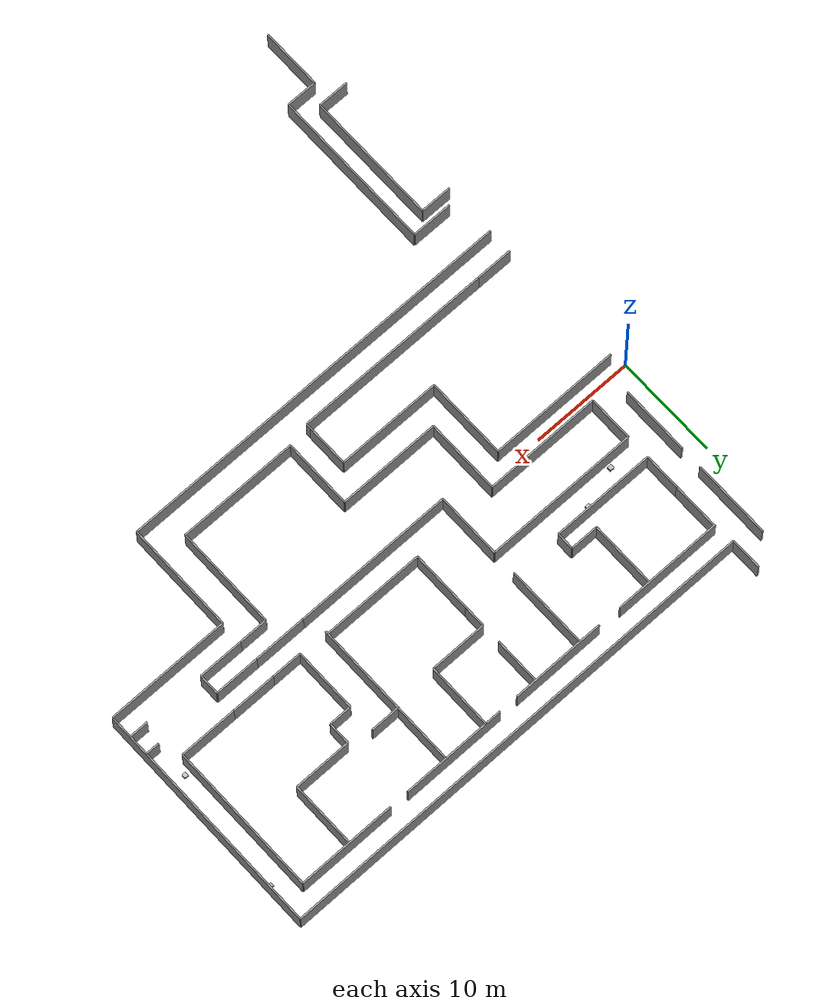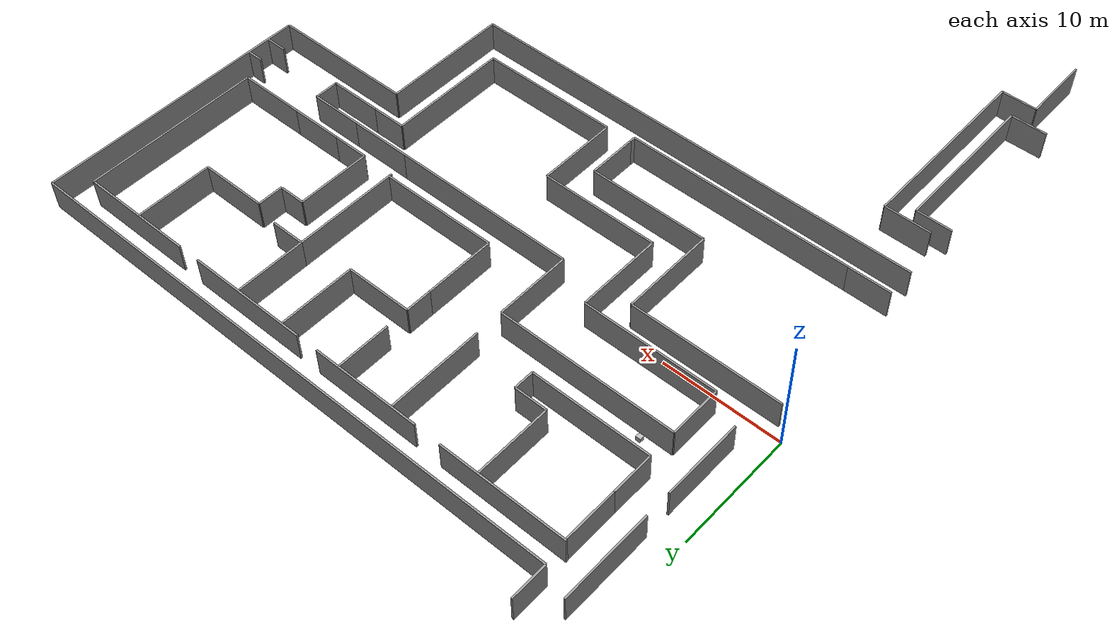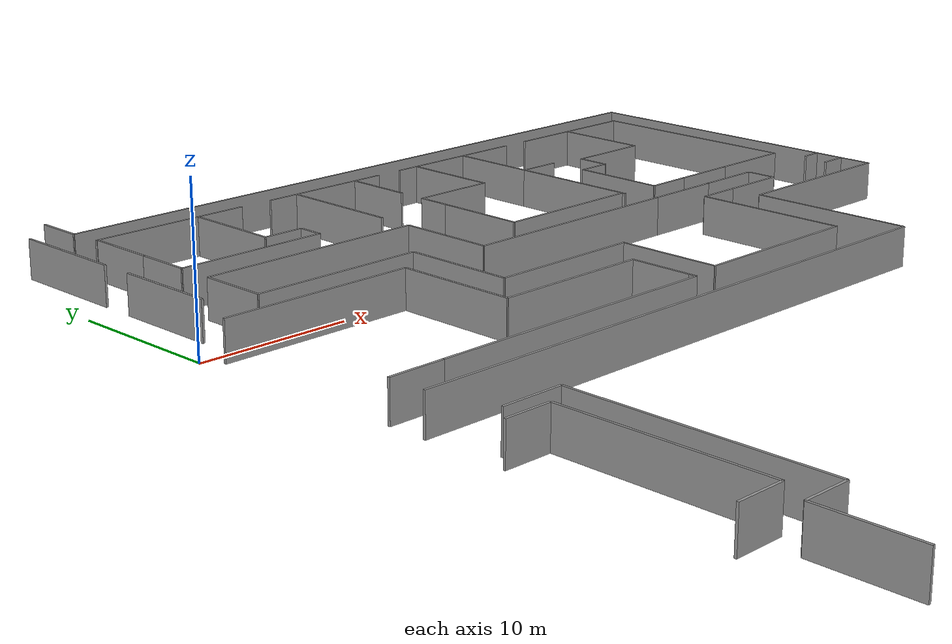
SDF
<sdf version="1.6">
 <world name="default">
  <model name="Wean4Complete">
   <pose>-5 0 0 0 -0 0</pose>
   <static>1</static>
   <link name="Wall_27">
    <collision name="Wall_27_Collision">
     <geometry><box><size>7.676 0.15 2.5</size></box></geometry>
     <pose>0 0 1.25 0 -0 0</pose>
    </collision>
    <visual name="Wall_27_Visual">
     <pose>0 0 1.25 0 -0 0</pose>
     <geometry><box><size>7.676 0.15 2.5</size></box></geometry>
     <material>
      <script><uri>file://media/materials/scripts/gazebo.material</uri><name>Gazebo/Grey</name></script>
      <ambient>1 1 1 1</ambient>
     </material>
    </visual>
    <pose>7.166 15.189 0 0 0 1.57079632679</pose>
   </link>
   <link name="Wall_29">
    <collision name="Wall_29_Collision">
     <geometry><box><size>3.081 0.15 2.5</size></box></geometry>
     <pose>0 0 1.25 0 -0 0</pose>
    </collision>
    <visual name="Wall_29_Visual">
     <pose>0 0 1.25 0 -0 0</pose>
     <geometry><box><size>3.081 0.15 2.5</size></box></geometry>
     <material>
      <script><uri>file://media/materials/scripts/gazebo.material</uri><name>Gazebo/Grey</name></script>
      <ambient>1 1 1 1</ambient>
     </material>
    </visual>
    <pose>9.545 19.5405 0 0 0 1.57079632679</pose>
   </link>
   <link name="Wall_30">
    <collision name="Wall_30_Collision">
     <geometry><box><size>48.378 0.15 2.5</size></box></geometry>
     <pose>0 0 1.25 0 -0 0</pose>
    </collision>
    <visual name="Wall_30_Visual">
     <pose>0 0 1.25 0 -0 0</pose>
     <geometry><box><size>48.378 0.15 2.5</size></box></geometry>
     <material>
      <script><uri>file://media/materials/scripts/gazebo.material</uri><name>Gazebo/Grey</name></script>
      <ambient>1 1 1 1</ambient>
     </material>
    </visual>
    <pose>33.734 18.0 0 0 0 0.0</pose>
   </link>
   <link name="Wall_31">
    <collision name="Wall_31_Collision">
     <geometry><box><size>23.189 0.15 2.5</size></box></geometry>
     <pose>0 0 1.25 0 -0 0</pose>
    </collision>
    <visual name="Wall_31_Visual">
     <pose>0 0 1.25 0 -0 0</pose>
     <geometry><box><size>23.189 0.15 2.5</size></box></geometry>
     <material>
      <script><uri>file://media/materials/scripts/gazebo.material</uri><name>Gazebo/Grey</name></script>
      <ambient>1 1 1 1</ambient>
     </material>
    </visual>
    <pose>57.923 6.4055 0 0 0 1.57079632679</pose>
   </link>
   <link name="Wall_32">
    <collision name="Wall_32_Collision">
     <geometry><box><size>1.838 0.15 2.5</size></box></geometry>
     <pose>0 0 1.25 0 -0 0</pose>
    </collision>
    <visual name="Wall_32_Visual">
     <pose>0 0 1.25 0 -0 0</pose>
     <geometry><box><size>1.838 0.15 2.5</size></box></geometry>
     <material>
      <script><uri>file://media/materials/scripts/gazebo.material</uri><name>Gazebo/Grey</name></script>
      <ambient>1 1 1 1</ambient>
     </material>
    </visual>
    <pose>57.004 -2.973 0 0 0 0.0</pose>
   </link>
   <link name="Wall_33">
    <collision name="Wall_33_Collision">
     <geometry><box><size>1.351 0.15 2.5</size></box></geometry>
     <pose>0 0 1.25 0 -0 0</pose>
    </collision>
    <visual name="Wall_33_Visual">
     <pose>0 0 1.25 0 -0 0</pose>
     <geometry><box><size>1.351 0.15 2.5</size></box></geometry>
     <material>
      <script><uri>file://media/materials/scripts/gazebo.material</uri><name>Gazebo/Grey</name></script>
      <ambient>1 1 1 1</ambient>
     </material>
    </visual>
    <pose>57.2475 -0.973 0 0 0 0.0</pose>
   </link>
   <link name="Wall_34">
    <collision name="Wall_34_Collision">
     <geometry><box><size>12.162 0.15 2.5</size></box></geometry>
     <pose>0 0 1.25 0 -0 0</pose>
    </collision>
    <visual name="Wall_34_Visual">
     <pose>0 0 1.25 0 -0 0</pose>
     <geometry><box><size>12.162 0.15 2.5</size></box></geometry>
     <material>
      <script><uri>file://media/materials/scripts/gazebo.material</uri><name>Gazebo/Grey</name></script>
      <ambient>1 1 1 1</ambient>
     </material>
    </visual>
    <pose>51.842 -5.189 0 0 0 0.0</pose>
   </link>
   <link name="Wall_35">
    <collision name="Wall_35_Collision">
     <geometry><box><size>4.378 0.15 2.5</size></box></geometry>
     <pose>0 0 1.25 0 -0 0</pose>
    </collision>
    <visual name="Wall_35_Visual">
     <pose>0 0 1.25 0 -0 0</pose>
     <geometry><box><size>4.378 0.15 2.5</size></box></geometry>
     <material>
      <script><uri>file://media/materials/scripts/gazebo.material</uri><name>Gazebo/Grey</name></script>
      <ambient>1 1 1 1</ambient>
     </material>
    </visual>
    <pose>47.95 -2.973 0 0 0 0.0</pose>
   </link>
   <link name="Wall_36">
    <collision name="Wall_36_Collision">
     <geometry><box><size>2.0 0.15 2.5</size></box></geometry>
     <pose>0 0 1.25 0 -0 0</pose>
    </collision>
    <visual name="Wall_36_Visual">
     <pose>0 0 1.25 0 -0 0</pose>
     <geometry><box><size>2.0 0.15 2.5</size></box></geometry>
     <material>
      <script><uri>file://media/materials/scripts/gazebo.material</uri><name>Gazebo/Grey</name></script>
      <ambient>1 1 1 1</ambient>
     </material>
    </visual>
    <pose>50.139 -1.973 0 0 0 1.57079632679</pose>
   </link>
   <link name="Wall_37">
    <collision name="Wall_37_Collision">
     <geometry><box><size>4.378 0.15 2.5</size></box></geometry>
     <pose>0 0 1.25 0 -0 0</pose>
    </collision>
    <visual name="Wall_37_Visual">
     <pose>0 0 1.25 0 -0 0</pose>
     <geometry><box><size>4.378 0.15 2.5</size></box></geometry>
     <material>
      <script><uri>file://media/materials/scripts/gazebo.material</uri><name>Gazebo/Grey</name></script>
      <ambient>1 1 1 1</ambient>
     </material>
    </visual>
    <pose>47.95 -0.973 0 0 0 0.0</pose>
   </link>
   <link name="Wall_38">
    <collision name="Wall_38_Collision">
     <geometry><box><size>4.378 0.15 2.5</size></box></geometry>
     <pose>0 0 1.25 0 -0 0</pose>
    </collision>
    <visual name="Wall_38_Visual">
     <pose>0 0 1.25 0 -0 0</pose>
     <geometry><box><size>4.378 0.15 2.5</size></box></geometry>
     <material>
      <script><uri>file://media/materials/scripts/gazebo.material</uri><name>Gazebo/Grey</name></script>
      <ambient>1 1 1 1</ambient>
     </material>
    </visual>
    <pose>47.95 1.081 0 0 0 0.0</pose>
   </link>
   <link name="Wall_39">
    <collision name="Wall_39_Collision">
     <geometry><box><size>5.622 0.15 2.5</size></box></geometry>
     <pose>0 0 1.25 0 -0 0</pose>
    </collision>
    <visual name="Wall_39_Visual">
     <pose>0 0 1.25 0 -0 0</pose>
     <geometry><box><size>5.622 0.15 2.5</size></box></geometry>
     <material>
      <script><uri>file://media/materials/scripts/gazebo.material</uri><name>Gazebo/Grey</name></script>
      <ambient>1 1 1 1</ambient>
     </material>
    </visual>
    <pose>52.95 1.081 0 0 0 0.0</pose>
   </link>
   <link name="Wall_40">
    <collision name="Wall_40_Collision">
     <geometry><box><size>14.811 0.15 2.5</size></box></geometry>
     <pose>0 0 1.25 0 -0 0</pose>
    </collision>
    <visual name="Wall_40_Visual">
     <pose>0 0 1.25 0 -0 0</pose>
     <geometry><box><size>14.811 0.15 2.5</size></box></geometry>
     <material>
      <script><uri>file://media/materials/scripts/gazebo.material</uri><name>Gazebo/Grey</name></script>
      <ambient>1 1 1 1</ambient>
     </material>
    </visual>
    <pose>55.761 8.4865 0 0 0 1.57079632679</pose>
   </link>
   <link name="Wall_41">
    <collision name="Wall_41_Collision">
     <geometry><box><size>9.676 0.15 2.5</size></box></geometry>
     <pose>0 0 1.25 0 -0 0</pose>
    </collision>
    <visual name="Wall_41_Visual">
     <pose>0 0 1.25 0 -0 0</pose>
     <geometry><box><size>9.676 0.15 2.5</size></box></geometry>
     <material>
      <script><uri>file://media/materials/scripts/gazebo.material</uri><name>Gazebo/Grey</name></script>
      <ambient>1 1 1 1</ambient>
     </material>
    </visual>
    <pose>50.923 15.892 0 0 0 0.0</pose>
   </link>
   <link name="Wall_42">
    <collision name="Wall_42_Collision">
     <geometry><box><size>10.27 0.15 2.5</size></box></geometry>
     <pose>0 0 1.25 0 -0 0</pose>
    </collision>
    <visual name="Wall_42_Visual">
     <pose>0 0 1.25 0 -0 0</pose>
     <geometry><box><size>10.27 0.15 2.5</size></box></geometry>
     <material>
      <script><uri>file://media/materials/scripts/gazebo.material</uri><name>Gazebo/Grey</name></script>
      <ambient>1 1 1 1</ambient>
     </material>
    </visual>
    <pose>39.058 15.892 0 0 0 0.0</pose>
   </link>
   <link name="Wall_43">
    <collision name="Wall_43_Collision">
     <geometry><box><size>9.243 0.15 2.5</size></box></geometry>
     <pose>0 0 1.25 0 -0 0</pose>
    </collision>
    <visual name="Wall_43_Visual">
     <pose>0 0 1.25 0 -0 0</pose>
     <geometry><box><size>9.243 0.15 2.5</size></box></geometry>
     <material>
      <script><uri>file://media/materials/scripts/gazebo.material</uri><name>Gazebo/Grey</name></script>
      <ambient>1 1 1 1</ambient>
     </material>
    </visual>
    <pose>27.4095 15.892 0 0 0 0.0</pose>
   </link>
   <link name="Wall_44">
    <collision name="Wall_44_Collision">
     <geometry><box><size>6.433 0.15 2.5</size></box></geometry>
     <pose>0 0 1.25 0 -0 0</pose>
    </collision>
    <visual name="Wall_44_Visual">
     <pose>0 0 1.25 0 -0 0</pose>
     <geometry><box><size>6.433 0.15 2.5</size></box></geometry>
     <material>
      <script><uri>file://media/materials/scripts/gazebo.material</uri><name>Gazebo/Grey</name></script>
      <ambient>1 1 1 1</ambient>
     </material>
    </visual>
    <pose>50.626 12.6755 0 0 0 1.57079632679</pose>
   </link>
   <link name="Wall_45">
    <collision name="Wall_45_Collision">
     <geometry><box><size>5.622 0.15 2.5</size></box></geometry>
     <pose>0 0 1.25 0 -0 0</pose>
    </collision>
    <visual name="Wall_45_Visual">
     <pose>0 0 1.25 0 -0 0</pose>
     <geometry><box><size>5.622 0.15 2.5</size></box></geometry>
     <material>
      <script><uri>file://media/materials/scripts/gazebo.material</uri><name>Gazebo/Grey</name></script>
      <ambient>1 1 1 1</ambient>
     </material>
    </visual>
    <pose>47.815 9.459 0 0 0 0.0</pose>
   </link>
   <link name="Wall_46">
    <collision name="Wall_46_Collision">
     <geometry><box><size>2.162 0.15 2.5</size></box></geometry>
     <pose>0 0 1.25 0 -0 0</pose>
    </collision>
    <visual name="Wall_46_Visual">
     <pose>0 0 1.25 0 -0 0</pose>
     <geometry><box><size>2.162 0.15 2.5</size></box></geometry>
     <material>
      <script><uri>file://media/materials/scripts/gazebo.material</uri><name>Gazebo/Grey</name></script>
      <ambient>1 1 1 1</ambient>
     </material>
    </visual>
    <pose>45.004 8.378 0 0 0 1.57079632679</pose>
   </link>
   <link name="Wall_47">
    <collision name="Wall_47_Collision">
     <geometry><box><size>2.162 0.15 2.5</size></box></geometry>
     <pose>0 0 1.25 0 -0 0</pose>
    </collision>
    <visual name="Wall_47_Visual">
     <pose>0 0 1.25 0 -0 0</pose>
     <geometry><box><size>2.162 0.15 2.5</size></box></geometry>
     <material>
      <script><uri>file://media/materials/scripts/gazebo.material</uri><name>Gazebo/Grey</name></script>
      <ambient>1 1 1 1</ambient>
     </material>
    </visual>
    <pose>43.869 7.297 0 0 0 0.0</pose>
   </link>
   <link name="Wall_48">
    <collision name="Wall_48_Collision">
     <geometry><box><size>6.216 0.15 2.5</size></box></geometry>
     <pose>0 0 1.25 0 -0 0</pose>
    </collision>
    <visual name="Wall_48_Visual">
     <pose>0 0 1.25 0 -0 0</pose>
     <geometry><box><size>6.216 0.15 2.5</size></box></geometry>
     <material>
      <script><uri>file://media/materials/scripts/gazebo.material</uri><name>Gazebo/Grey</name></script>
      <ambient>1 1 1 1</ambient>
     </material>
    </visual>
    <pose>42.788 4.189 0 0 0 1.57079632679</pose>
   </link>
   <link name="Wall_49">
    <collision name="Wall_49_Collision">
     <geometry><box><size>2.973 0.15 2.5</size></box></geometry>
     <pose>0 0 1.25 0 -0 0</pose>
    </collision>
    <visual name="Wall_49_Visual">
     <pose>0 0 1.25 0 -0 0</pose>
     <geometry><box><size>2.973 0.15 2.5</size></box></geometry>
     <material>
      <script><uri>file://media/materials/scripts/gazebo.material</uri><name>Gazebo/Grey</name></script>
      <ambient>1 1 1 1</ambient>
     </material>
    </visual>
    <pose>44.2745 1.081 0 0 0 0.0</pose>
   </link>
   <link name="Wall_50">
    <collision name="Wall_50_Collision">
     <geometry><box><size>5.135 0.15 2.5</size></box></geometry>
     <pose>0 0 1.25 0 -0 0</pose>
    </collision>
    <visual name="Wall_50_Visual">
     <pose>0 0 1.25 0 -0 0</pose>
     <geometry><box><size>5.135 0.15 2.5</size></box></geometry>
     <material>
      <script><uri>file://media/materials/scripts/gazebo.material</uri><name>Gazebo/Grey</name></script>
      <ambient>1 1 1 1</ambient>
     </material>
    </visual>
    <pose>43.1935 -0.973 0 0 0 0.0</pose>
   </link>
   <link name="Wall_51">
    <collision name="Wall_51_Collision">
     <geometry><box><size>8.919 0.15 2.5</size></box></geometry>
     <pose>0 0 1.25 0 -0 0</pose>
    </collision>
    <visual name="Wall_51_Visual">
     <pose>0 0 1.25 0 -0 0</pose>
     <geometry><box><size>8.919 0.15 2.5</size></box></geometry>
     <material>
      <script><uri>file://media/materials/scripts/gazebo.material</uri><name>Gazebo/Grey</name></script>
      <ambient>1 1 1 1</ambient>
     </material>
    </visual>
    <pose>39.923 5.5405 0 0 0 1.57079632679</pose>
   </link>
   <link name="Wall_52">
    <collision name="Wall_52_Collision">
     <geometry><box><size>2.865 0.15 2.5</size></box></geometry>
     <pose>0 0 1.25 0 -0 0</pose>
    </collision>
    <visual name="Wall_52_Visual">
     <pose>0 0 1.25 0 -0 0</pose>
     <geometry><box><size>2.865 0.15 2.5</size></box></geometry>
     <material>
      <script><uri>file://media/materials/scripts/gazebo.material</uri><name>Gazebo/Grey</name></script>
      <ambient>1 1 1 1</ambient>
     </material>
    </visual>
    <pose>41.3555 10.0 0 0 0 0.0</pose>
   </link>
   <link name="Wall_53">
    <collision name="Wall_53_Collision">
     <geometry><box><size>5.892 0.15 2.5</size></box></geometry>
     <pose>0 0 1.25 0 -0 0</pose>
    </collision>
    <visual name="Wall_53_Visual">
     <pose>0 0 1.25 0 -0 0</pose>
     <geometry><box><size>5.892 0.15 2.5</size></box></geometry>
     <material>
      <script><uri>file://media/materials/scripts/gazebo.material</uri><name>Gazebo/Grey</name></script>
      <ambient>1 1 1 1</ambient>
     </material>
    </visual>
    <pose>39.923 12.946 0 0 0 1.57079632679</pose>
   </link>
   <link name="Wall_54">
    <collision name="Wall_54_Collision">
     <geometry><box><size>10.757 0.15 2.5</size></box></geometry>
     <pose>0 0 1.25 0 -0 0</pose>
    </collision>
    <visual name="Wall_54_Visual">
     <pose>0 0 1.25 0 -0 0</pose>
     <geometry><box><size>10.757 0.15 2.5</size></box></geometry>
     <material>
      <script><uri>file://media/materials/scripts/gazebo.material</uri><name>Gazebo/Grey</name></script>
      <ambient>1 1 1 1</ambient>
     </material>
    </visual>
    <pose>45.761 -10.5675 0 0 0 1.57079632679</pose>
   </link>
   <link name="Wall_55">
    <collision name="Wall_55_Collision">
     <geometry><box><size>39.838 0.15 2.5</size></box></geometry>
     <pose>0 0 1.25 0 -0 0</pose>
    </collision>
    <visual name="Wall_55_Visual">
     <pose>0 0 1.25 0 -0 0</pose>
     <geometry><box><size>39.838 0.15 2.5</size></box></geometry>
     <material>
      <script><uri>file://media/materials/scripts/gazebo.material</uri><name>Gazebo/Grey</name></script>
      <ambient>1 1 1 1</ambient>
     </material>
    </visual>
    <pose>25.842 -15.946 0 0 0 0.0</pose>
   </link>
   <link name="Wall_56">
    <collision name="Wall_56_Collision">
     <geometry><box><size>4.541 0.15 2.5</size></box></geometry>
     <pose>0 0 1.25 0 -0 0</pose>
    </collision>
    <visual name="Wall_56_Visual">
     <pose>0 0 1.25 0 -0 0</pose>
     <geometry><box><size>4.541 0.15 2.5</size></box></geometry>
     <material>
      <script><uri>file://media/materials/scripts/gazebo.material</uri><name>Gazebo/Grey</name></script>
      <ambient>1 1 1 1</ambient>
     </material>
    </visual>
    <pose>9.815 13.6215 0 0 0 1.57079632679</pose>
   </link>
   <link name="Wall_57">
    <collision name="Wall_57_Collision">
     <geometry><box><size>4.541 0.15 2.5</size></box></geometry>
     <pose>0 0 1.25 0 -0 0</pose>
    </collision>
    <visual name="Wall_57_Visual">
     <pose>0 0 1.25 0 -0 0</pose>
     <geometry><box><size>4.541 0.15 2.5</size></box></geometry>
     <material>
      <script><uri>file://media/materials/scripts/gazebo.material</uri><name>Gazebo/Grey</name></script>
      <ambient>1 1 1 1</ambient>
     </material>
    </visual>
    <pose>29.923 13.6215 0 0 0 1.57079632679</pose>
   </link>
   <link name="Wall_58">
    <collision name="Wall_58_Collision">
     <geometry><box><size>6.433 0.15 2.5</size></box></geometry>
     <pose>0 0 1.25 0 -0 0</pose>
    </collision>
    <visual name="Wall_58_Visual">
     <pose>0 0 1.25 0 -0 0</pose>
     <geometry><box><size>6.433 0.15 2.5</size></box></geometry>
     <material>
      <script><uri>file://media/materials/scripts/gazebo.material</uri><name>Gazebo/Grey</name></script>
      <ambient>1 1 1 1</ambient>
     </material>
    </visual>
    <pose>35.491 12.6755 0 0 0 1.57079632679</pose>
   </link>
   <link name="Wall_59">
    <collision name="Wall_59_Collision">
     <geometry><box><size>5.568 0.15 2.5</size></box></geometry>
     <pose>0 0 1.25 0 -0 0</pose>
    </collision>
    <visual name="Wall_59_Visual">
     <pose>0 0 1.25 0 -0 0</pose>
     <geometry><box><size>5.568 0.15 2.5</size></box></geometry>
     <material>
      <script><uri>file://media/materials/scripts/gazebo.material</uri><name>Gazebo/Grey</name></script>
      <ambient>1 1 1 1</ambient>
     </material>
    </visual>
    <pose>32.707 9.459 0 0 0 0.0</pose>
   </link>
   <link name="Wall_60">
    <collision name="Wall_60_Collision">
     <geometry><box><size>2.162 0.15 2.5</size></box></geometry>
     <pose>0 0 1.25 0 -0 0</pose>
    </collision>
    <visual name="Wall_60_Visual">
     <pose>0 0 1.25 0 -0 0</pose>
     <geometry><box><size>2.162 0.15 2.5</size></box></geometry>
     <material>
      <script><uri>file://media/materials/scripts/gazebo.material</uri><name>Gazebo/Grey</name></script>
      <ambient>1 1 1 1</ambient>
     </material>
    </visual>
    <pose>29.923 8.378 0 0 0 1.57079632679</pose>
   </link>
   <link name="Wall_61">
    <collision name="Wall_61_Collision">
     <geometry><box><size>8.108 0.15 2.5</size></box></geometry>
     <pose>0 0 1.25 0 -0 0</pose>
    </collision>
    <visual name="Wall_61_Visual">
     <pose>0 0 1.25 0 -0 0</pose>
     <geometry><box><size>8.108 0.15 2.5</size></box></geometry>
     <material>
      <script><uri>file://media/materials/scripts/gazebo.material</uri><name>Gazebo/Grey</name></script>
      <ambient>1 1 1 1</ambient>
     </material>
    </visual>
    <pose>24.95 11.838 0 0 0 1.57079632679</pose>
   </link>
   <link name="Wall_62">
    <collision name="Wall_62_Collision">
     <geometry><box><size>6.433 0.15 2.5</size></box></geometry>
     <pose>0 0 1.25 0 -0 0</pose>
    </collision>
    <visual name="Wall_62_Visual">
     <pose>0 0 1.25 0 -0 0</pose>
     <geometry><box><size>6.433 0.15 2.5</size></box></geometry>
     <material>
      <script><uri>file://media/materials/scripts/gazebo.material</uri><name>Gazebo/Grey</name></script>
      <ambient>1 1 1 1</ambient>
     </material>
    </visual>
    <pose>17.166 12.6755 0 0 0 1.57079632679</pose>
   </link>
   <link name="Wall_63">
    <collision name="Wall_63_Collision">
     <geometry><box><size>2.757 0.15 2.5</size></box></geometry>
     <pose>0 0 1.25 0 -0 0</pose>
    </collision>
    <visual name="Wall_63_Visual">
     <pose>0 0 1.25 0 -0 0</pose>
     <geometry><box><size>2.757 0.15 2.5</size></box></geometry>
     <material>
      <script><uri>file://media/materials/scripts/gazebo.material</uri><name>Gazebo/Grey</name></script>
      <ambient>1 1 1 1</ambient>
     </material>
    </visual>
    <pose>18.5445 9.459 0 0 0 0.0</pose>
   </link>
   <link name="Wall_64">
    <collision name="Wall_64_Collision">
     <geometry><box><size>1.675 0.15 2.5</size></box></geometry>
     <pose>0 0 1.25 0 -0 0</pose>
    </collision>
    <visual name="Wall_64_Visual">
     <pose>0 0 1.25 0 -0 0</pose>
     <geometry><box><size>1.675 0.15 2.5</size></box></geometry>
     <material>
      <script><uri>file://media/materials/scripts/gazebo.material</uri><name>Gazebo/Grey</name></script>
      <ambient>1 1 1 1</ambient>
     </material>
    </visual>
    <pose>19.923 8.6215 0 0 0 1.57079632679</pose>
   </link>
   <link name="Wall_65">
    <collision name="Wall_65_Collision">
     <geometry><box><size>10.108 0.15 2.5</size></box></geometry>
     <pose>0 0 1.25 0 -0 0</pose>
    </collision>
    <visual name="Wall_65_Visual">
     <pose>0 0 1.25 0 -0 0</pose>
     <geometry><box><size>10.108 0.15 2.5</size></box></geometry>
     <material>
      <script><uri>file://media/materials/scripts/gazebo.material</uri><name>Gazebo/Grey</name></script>
      <ambient>1 1 1 1</ambient>
     </material>
    </visual>
    <pose>14.869 7.784 0 0 0 0.0</pose>
   </link>
   <link name="Wall_66">
    <collision name="Wall_66_Collision">
     <geometry><box><size>3.567 0.15 2.5</size></box></geometry>
     <pose>0 0 1.25 0 -0 0</pose>
    </collision>
    <visual name="Wall_66_Visual">
     <pose>0 0 1.25 0 -0 0</pose>
     <geometry><box><size>3.567 0.15 2.5</size></box></geometry>
     <material>
      <script><uri>file://media/materials/scripts/gazebo.material</uri><name>Gazebo/Grey</name></script>
      <ambient>1 1 1 1</ambient>
     </material>
    </visual>
    <pose>9.815 9.5675 0 0 0 1.57079632679</pose>
   </link>
   <link name="Wall_67">
    <collision name="Wall_67_Collision">
     <geometry><box><size>5.946 0.15 2.5</size></box></geometry>
     <pose>0 0 1.25 0 -0 0</pose>
    </collision>
    <visual name="Wall_67_Visual">
     <pose>0 0 1.25 0 -0 0</pose>
     <geometry><box><size>5.946 0.15 2.5</size></box></geometry>
     <material>
      <script><uri>file://media/materials/scripts/gazebo.material</uri><name>Gazebo/Grey</name></script>
      <ambient>1 1 1 1</ambient>
     </material>
    </visual>
    <pose>29.923 4.324 0 0 0 1.57079632679</pose>
   </link>
   <link name="Wall_68">
    <collision name="Wall_68_Collision">
     <geometry><box><size>10.0 0.15 2.5</size></box></geometry>
     <pose>0 0 1.25 0 -0 0</pose>
    </collision>
    <visual name="Wall_68_Visual">
     <pose>0 0 1.25 0 -0 0</pose>
     <geometry><box><size>10.0 0.15 2.5</size></box></geometry>
     <material>
      <script><uri>file://media/materials/scripts/gazebo.material</uri><name>Gazebo/Grey</name></script>
      <ambient>1 1 1 1</ambient>
     </material>
    </visual>
    <pose>34.923 1.351 0 0 0 0.0</pose>
   </link>
   <link name="Wall_69">
    <collision name="Wall_69_Collision">
     <geometry><box><size>15.135 0.15 2.5</size></box></geometry>
     <pose>0 0 1.25 0 -0 0</pose>
    </collision>
    <visual name="Wall_69_Visual">
     <pose>0 0 1.25 0 -0 0</pose>
     <geometry><box><size>15.135 0.15 2.5</size></box></geometry>
     <material>
      <script><uri>file://media/materials/scripts/gazebo.material</uri><name>Gazebo/Grey</name></script>
      <ambient>1 1 1 1</ambient>
     </material>
    </visual>
    <pose>17.3825 5.405 0 0 0 0.0</pose>
   </link>
   <link name="Wall_70">
    <collision name="Wall_70_Collision">
     <geometry><box><size>15.676 0.15 2.5</size></box></geometry>
     <pose>0 0 1.25 0 -0 0</pose>
    </collision>
    <visual name="Wall_70_Visual">
     <pose>0 0 1.25 0 -0 0</pose>
     <geometry><box><size>15.676 0.15 2.5</size></box></geometry>
     <material>
      <script><uri>file://media/materials/scripts/gazebo.material</uri><name>Gazebo/Grey</name></script>
      <ambient>1 1 1 1</ambient>
     </material>
    </visual>
    <pose>32.788 -0.973 0 0 0 0.0</pose>
   </link>
   <link name="Wall_71">
    <collision name="Wall_71_Collision">
     <geometry><box><size>6.378 0.15 2.5</size></box></geometry>
     <pose>0 0 1.25 0 -0 0</pose>
    </collision>
    <visual name="Wall_71_Visual">
     <pose>0 0 1.25 0 -0 0</pose>
     <geometry><box><size>6.378 0.15 2.5</size></box></geometry>
     <material>
      <script><uri>file://media/materials/scripts/gazebo.material</uri><name>Gazebo/Grey</name></script>
      <ambient>1 1 1 1</ambient>
     </material>
    </visual>
    <pose>24.95 2.216 0 0 0 1.57079632679</pose>
   </link>
   <link name="Wall_72">
    <collision name="Wall_72_Collision">
     <geometry><box><size>2.811 0.15 2.5</size></box></geometry>
     <pose>0 0 1.25 0 -0 0</pose>
    </collision>
    <visual name="Wall_72_Visual">
     <pose>0 0 1.25 0 -0 0</pose>
     <geometry><box><size>2.811 0.15 2.5</size></box></geometry>
     <material>
      <script><uri>file://media/materials/scripts/gazebo.material</uri><name>Gazebo/Grey</name></script>
      <ambient>1 1 1 1</ambient>
     </material>
    </visual>
    <pose>44.3555 -2.973 0 0 0 0.0</pose>
   </link>
   <link name="Wall_73">
    <collision name="Wall_73_Collision">
     <geometry><box><size>10.054 0.15 2.5</size></box></geometry>
     <pose>0 0 1.25 0 -0 0</pose>
    </collision>
    <visual name="Wall_73_Visual">
     <pose>0 0 1.25 0 -0 0</pose>
     <geometry><box><size>10.054 0.15 2.5</size></box></geometry>
     <material>
      <script><uri>file://media/materials/scripts/gazebo.material</uri><name>Gazebo/Grey</name></script>
      <ambient>1 1 1 1</ambient>
     </material>
    </visual>
    <pose>42.95 -8.0 0 0 0 1.57079632679</pose>
   </link>
   <link name="Wall_74">
    <collision name="Wall_74_Collision">
     <geometry><box><size>11.73 0.15 2.5</size></box></geometry>
     <pose>0 0 1.25 0 -0 0</pose>
    </collision>
    <visual name="Wall_74_Visual">
     <pose>0 0 1.25 0 -0 0</pose>
     <geometry><box><size>11.73 0.15 2.5</size></box></geometry>
     <material>
      <script><uri>file://media/materials/scripts/gazebo.material</uri><name>Gazebo/Grey</name></script>
      <ambient>1 1 1 1</ambient>
     </material>
    </visual>
    <pose>37.085 -13.027 0 0 0 0.0</pose>
   </link>
   <link name="Wall_75">
    <collision name="Wall_75_Collision">
     <geometry><box><size>6.757 0.15 2.5</size></box></geometry>
     <pose>0 0 1.25 0 -0 0</pose>
    </collision>
    <visual name="Wall_75_Visual">
     <pose>0 0 1.25 0 -0 0</pose>
     <geometry><box><size>6.757 0.15 2.5</size></box></geometry>
     <material>
      <script><uri>file://media/materials/scripts/gazebo.material</uri><name>Gazebo/Grey</name></script>
      <ambient>1 1 1 1</ambient>
     </material>
    </visual>
    <pose>31.22 -9.6485 0 0 0 1.57079632679</pose>
   </link>
   <link name="Wall_76">
    <collision name="Wall_76_Collision">
     <geometry><box><size>10.0 0.15 2.5</size></box></geometry>
     <pose>0 0 1.25 0 -0 0</pose>
    </collision>
    <visual name="Wall_76_Visual">
     <pose>0 0 1.25 0 -0 0</pose>
     <geometry><box><size>10.0 0.15 2.5</size></box></geometry>
     <material>
      <script><uri>file://media/materials/scripts/gazebo.material</uri><name>Gazebo/Grey</name></script>
      <ambient>1 1 1 1</ambient>
     </material>
    </visual>
    <pose>26.22 -6.27 0 0 0 0.0</pose>
   </link>
   <link name="Wall_77">
    <collision name="Wall_77_Collision">
     <geometry><box><size>7.297 0.15 2.5</size></box></geometry>
     <pose>0 0 1.25 0 -0 0</pose>
    </collision>
    <visual name="Wall_77_Visual">
     <pose>0 0 1.25 0 -0 0</pose>
     <geometry><box><size>7.297 0.15 2.5</size></box></geometry>
     <material>
      <script><uri>file://media/materials/scripts/gazebo.material</uri><name>Gazebo/Grey</name></script>
      <ambient>1 1 1 1</ambient>
     </material>
    </visual>
    <pose>21.22 -2.6215 0 0 0 1.57079632679</pose>
   </link>
   <link name="Wall_78">
    <collision name="Wall_78_Collision">
     <geometry><box><size>11.405 0.15 2.5</size></box></geometry>
     <pose>0 0 1.25 0 -0 0</pose>
    </collision>
    <visual name="Wall_78_Visual">
     <pose>0 0 1.25 0 -0 0</pose>
     <geometry><box><size>11.405 0.15 2.5</size></box></geometry>
     <material>
      <script><uri>file://media/materials/scripts/gazebo.material</uri><name>Gazebo/Grey</name></script>
      <ambient>1 1 1 1</ambient>
     </material>
    </visual>
    <pose>15.5175 1.027 0 0 0 0.0</pose>
   </link>
   <link name="Wall_79">
    <collision name="Wall_79_Collision">
     <geometry><box><size>4.378 0.15 2.5</size></box></geometry>
     <pose>0 0 1.25 0 -0 0</pose>
    </collision>
    <visual name="Wall_79_Visual">
     <pose>0 0 1.25 0 -0 0</pose>
     <geometry><box><size>4.378 0.15 2.5</size></box></geometry>
     <material>
      <script><uri>file://media/materials/scripts/gazebo.material</uri><name>Gazebo/Grey</name></script>
      <ambient>1 1 1 1</ambient>
     </material>
    </visual>
    <pose>9.815 3.216 0 0 0 1.57079632679</pose>
   </link>
   <link name="Wall_80">
    <collision name="Wall_80_Collision">
     <geometry><box><size>3.622 0.15 2.5</size></box></geometry>
     <pose>0 0 1.25 0 -0 0</pose>
    </collision>
    <visual name="Wall_80_Visual">
     <pose>0 0 1.25 0 -0 0</pose>
     <geometry><box><size>3.622 0.15 2.5</size></box></geometry>
     <material>
      <script><uri>file://media/materials/scripts/gazebo.material</uri><name>Gazebo/Grey</name></script>
      <ambient>1 1 1 1</ambient>
     </material>
    </visual>
    <pose>7.734 -13.514 0 0 0 0.0</pose>
   </link>
   <link name="Wall_81">
    <collision name="Wall_81_Collision">
     <geometry><box><size>12.811 0.15 2.5</size></box></geometry>
     <pose>0 0 1.25 0 -0 0</pose>
    </collision>
    <visual name="Wall_81_Visual">
     <pose>0 0 1.25 0 -0 0</pose>
     <geometry><box><size>12.811 0.15 2.5</size></box></geometry>
     <material>
      <script><uri>file://media/materials/scripts/gazebo.material</uri><name>Gazebo/Grey</name></script>
      <ambient>1 1 1 1</ambient>
     </material>
    </visual>
    <pose>12.3285 -0.973 0 0 0 0.0</pose>
   </link>
   <link name="Wall_82">
    <collision name="Wall_82_Collision">
     <geometry><box><size>7.946 0.15 2.5</size></box></geometry>
     <pose>0 0 1.25 0 -0 0</pose>
    </collision>
    <visual name="Wall_82_Visual">
     <pose>0 0 1.25 0 -0 0</pose>
     <geometry><box><size>7.946 0.15 2.5</size></box></geometry>
     <material>
      <script><uri>file://media/materials/scripts/gazebo.material</uri><name>Gazebo/Grey</name></script>
      <ambient>1 1 1 1</ambient>
     </material>
    </visual>
    <pose>18.734 -4.946 0 0 0 1.57079632679</pose>
   </link>
   <link name="Wall_83">
    <collision name="Wall_83_Collision">
     <geometry><box><size>10.216 0.15 2.5</size></box></geometry>
     <pose>0 0 1.25 0 -0 0</pose>
    </collision>
    <visual name="Wall_83_Visual">
     <pose>0 0 1.25 0 -0 0</pose>
     <geometry><box><size>10.216 0.15 2.5</size></box></geometry>
     <material>
      <script><uri>file://media/materials/scripts/gazebo.material</uri><name>Gazebo/Grey</name></script>
      <ambient>1 1 1 1</ambient>
     </material>
    </visual>
    <pose>23.842 -8.919 0 0 0 0.0</pose>
   </link>
   <link name="Wall_84">
    <collision name="Wall_84_Collision">
     <geometry><box><size>4.108 0.15 2.5</size></box></geometry>
     <pose>0 0 1.25 0 -0 0</pose>
    </collision>
    <visual name="Wall_84_Visual">
     <pose>0 0 1.25 0 -0 0</pose>
     <geometry><box><size>4.108 0.15 2.5</size></box></geometry>
     <material>
      <script><uri>file://media/materials/scripts/gazebo.material</uri><name>Gazebo/Grey</name></script>
      <ambient>1 1 1 1</ambient>
     </material>
    </visual>
    <pose>28.95 -10.973 0 0 0 1.57079632679</pose>
   </link>
   <link name="Wall_85">
    <collision name="Wall_85_Collision">
     <geometry><box><size>19.405 0.15 2.5</size></box></geometry>
     <pose>0 0 1.25 0 -0 0</pose>
    </collision>
    <visual name="Wall_85_Visual">
     <pose>0 0 1.25 0 -0 0</pose>
     <geometry><box><size>19.405 0.15 2.5</size></box></geometry>
     <material>
      <script><uri>file://media/materials/scripts/gazebo.material</uri><name>Gazebo/Grey</name></script>
      <ambient>1 1 1 1</ambient>
     </material>
    </visual>
    <pose>19.2475 -13.514 0 0 0 0.0</pose>
   </link>
   <link name="Wall_86">
    <collision name="Wall_86_Collision">
     <geometry><box><size>0.487 0.15 2.5</size></box></geometry>
     <pose>0 0 1.25 0 -0 0</pose>
    </collision>
    <visual name="Wall_86_Visual">
     <pose>0 0 1.25 0 -0 0</pose>
     <geometry><box><size>0.487 0.15 2.5</size></box></geometry>
     <material>
      <script><uri>file://media/materials/scripts/gazebo.material</uri><name>Gazebo/Grey</name></script>
      <ambient>1 1 1 1</ambient>
     </material>
    </visual>
    <pose>28.95 -13.2705 0 0 0 1.57079632679</pose>
   </link>
   <link name="Wall_101">
    <collision name="Wall_101_Collision">
     <geometry><box><size>5.946 0.15 2.5</size></box></geometry>
     <pose>0 0 1.25 0 -0 0</pose>
    </collision>
    <visual name="Wall_101_Visual">
     <pose>0 0 1.25 0 -0 0</pose>
     <geometry><box><size>5.946 0.15 2.5</size></box></geometry>
     <material>
      <script><uri>file://media/materials/scripts/gazebo.material</uri><name>Gazebo/Grey</name></script>
      <ambient>1 1 1 1</ambient>
     </material>
    </visual>
    <pose>7.923 -38.919 0 0 0 1.57079632679</pose>
   </link>
   <link name="Wall_102">
    <collision name="Wall_102_Collision">
     <geometry><box><size>2.973 0.15 2.5</size></box></geometry>
     <pose>0 0 1.25 0 -0 0</pose>
    </collision>
    <visual name="Wall_102_Visual">
     <pose>0 0 1.25 0 -0 0</pose>
     <geometry><box><size>2.973 0.15 2.5</size></box></geometry>
     <material>
      <script><uri>file://media/materials/scripts/gazebo.material</uri><name>Gazebo/Grey</name></script>
      <ambient>1 1 1 1</ambient>
     </material>
    </visual>
    <pose>9.4095 -35.946 0 0 0 0.0</pose>
   </link>
   <link name="Wall_103">
    <collision name="Wall_103_Collision">
     <geometry><box><size>15.946 0.15 2.5</size></box></geometry>
     <pose>0 0 1.25 0 -0 0</pose>
    </collision>
    <visual name="Wall_103_Visual">
     <pose>0 0 1.25 0 -0 0</pose>
     <geometry><box><size>15.946 0.15 2.5</size></box></geometry>
     <material>
      <script><uri>file://media/materials/scripts/gazebo.material</uri><name>Gazebo/Grey</name></script>
      <ambient>1 1 1 1</ambient>
     </material>
    </visual>
    <pose>10.896 -27.973 0 0 0 1.57079632679</pose>
   </link>
   <link name="Wall_104">
    <collision name="Wall_104_Collision">
     <geometry><box><size>3.946 0.15 2.5</size></box></geometry>
     <pose>0 0 1.25 0 -0 0</pose>
    </collision>
    <visual name="Wall_104_Visual">
     <pose>0 0 1.25 0 -0 0</pose>
     <geometry><box><size>3.946 0.15 2.5</size></box></geometry>
     <material>
      <script><uri>file://media/materials/scripts/gazebo.material</uri><name>Gazebo/Grey</name></script>
      <ambient>1 1 1 1</ambient>
     </material>
    </visual>
    <pose>8.923 -20.0 0 0 0 0.0</pose>
   </link>
   <link name="Wall_113">
    <collision name="Wall_113_Collision">
     <geometry><box><size>3.027 0.15 2.5</size></box></geometry>
     <pose>0 0 1.25 0 -0 0</pose>
    </collision>
    <visual name="Wall_113_Visual">
     <pose>0 0 1.25 0 -0 0</pose>
     <geometry><box><size>3.027 0.15 2.5</size></box></geometry>
     <material>
      <script><uri>file://media/materials/scripts/gazebo.material</uri><name>Gazebo/Grey</name></script>
      <ambient>1 1 1 1</ambient>
     </material>
    </visual>
    <pose>7.4365 -34.108 0 0 0 0.0</pose>
   </link>
   <link name="Wall_114">
    <collision name="Wall_114_Collision">
     <geometry><box><size>12.973 0.15 2.5</size></box></geometry>
     <pose>0 0 1.25 0 -0 0</pose>
    </collision>
    <visual name="Wall_114_Visual">
     <pose>0 0 1.25 0 -0 0</pose>
     <geometry><box><size>12.973 0.15 2.5</size></box></geometry>
     <material>
      <script><uri>file://media/materials/scripts/gazebo.material</uri><name>Gazebo/Grey</name></script>
      <ambient>1 1 1 1</ambient>
     </material>
    </visual>
    <pose>8.95 -27.6215 0 0 0 1.57079632679</pose>
   </link>
   <link name="Wall_115">
    <collision name="Wall_115_Collision">
     <geometry><box><size>3.027 0.15 2.5</size></box></geometry>
     <pose>0 0 1.25 0 -0 0</pose>
    </collision>
    <visual name="Wall_115_Visual">
     <pose>0 0 1.25 0 -0 0</pose>
     <geometry><box><size>3.027 0.15 2.5</size></box></geometry>
     <material>
      <script><uri>file://media/materials/scripts/gazebo.material</uri><name>Gazebo/Grey</name></script>
      <ambient>1 1 1 1</ambient>
     </material>
    </visual>
    <pose>7.4365 -21.135 0 0 0 0.0</pose>
   </link>
   <link name="Wall_124">
    <collision name="Wall_124_Collision">
     <geometry><box><size>6.757 0.15 2.5</size></box></geometry>
     <pose>0 0 1.25 0 -0 0</pose>
    </collision>
    <visual name="Wall_124_Visual">
     <pose>0 0 1.25 0 -0 0</pose>
     <geometry><box><size>6.757 0.15 2.5</size></box></geometry>
     <material>
      <script><uri>file://media/materials/scripts/gazebo.material</uri><name>Gazebo/Grey</name></script>
      <ambient>1 1 1 1</ambient>
     </material>
    </visual>
    <pose>7.166 5.8105 0 0 0 1.57079632679</pose>
   </link>
   <link name="Wall_127">
    <collision name="Wall_127_Collision">
     <geometry><box><size>10.811 0.15 2.5</size></box></geometry>
     <pose>0 0 1.25 0 -0 0</pose>
    </collision>
    <visual name="Wall_127_Visual">
     <pose>0 0 1.25 0 -0 0</pose>
     <geometry><box><size>10.811 0.15 2.5</size></box></geometry>
     <material>
      <script><uri>file://media/materials/scripts/gazebo.material</uri><name>Gazebo/Grey</name></script>
      <ambient>1 1 1 1</ambient>
     </material>
    </visual>
    <pose>15.1125 15.946 0 0 0 0.0</pose>
   </link>
  </model>
  <model name="Obstacle_6">
   <static>1</static>
   <link name="link">
    <collision name="collision"><geometry><box><size>0.4 0.4 0.4</size></box></geometry></collision>
    <visual name="visual">
     <geometry><box><size>0.4 0.4 0.4</size></box></geometry>
     <material>
      <script>
       <name>obstacle/box</name>
       <uri>file:////home/vagrant/catkin_ws/src/cp3_base/models/media/materials/scripts/cp3.material</uri>
      </script>
     </material>
    </visual>
   </link>
   <pose>7.2 5.9 0.2 0 0 0</pose>
  </model>
  <model name="Obstacle_7">
   <static>1</static>
   <link name="link">
    <collision name="collision"><geometry><box><size>0.4 0.4 0.4</size></box></geometry></collision>
    <visual name="visual">
     <geometry><box><size>0.4 0.4 0.4</size></box></geometry>
     <material>
      <script>
       <name>obstacle/box</name>
       <uri>file:////home/vagrant/catkin_ws/src/cp3_base/models/media/materials/scripts/cp3.material</uri>
      </script>
     </material>
    </visual>
   </link>
   <pose>10.925 7.2 0.2 0 0 0</pose>
  </model>
  <model name="Obstacle_8">
   <static>1</static>
   <link name="link">
    <collision name="collision"><geometry><box><size>0.4 0.4 0.4</size></box></geometry></collision>
    <visual name="visual">
     <geometry><box><size>0.4 0.4 0.4</size></box></geometry>
     <material>
      <script>
       <name>obstacle/box</name>
       <uri>file:////home/vagrant/catkin_ws/src/cp3_base/models/media/materials/scripts/cp3.material</uri>
      </script>
     </material>
    </visual>
   </link>
   <pose>52.5 13.8 0.2 0 0 0</pose>
  </model>
  <model name="Obstacle_9">
   <static>1</static>
   <link name="link">
    <collision name="collision"><geometry><box><size>0.4 0.4 0.4</size></box></geometry></collision>
    <visual name="visual">
     <geometry><box><size>0.4 0.4 0.4</size></box></geometry>
     <material>
      <script>
       <name>obstacle/box</name>
       <uri>file:////home/vagrant/catkin_ws/src/cp3_base/models/media/materials/scripts/cp3.material</uri>
      </script>
     </material>
    </visual>
   </link>
   <pose>51.4 2.0 0.2 0 0 0</pose>
  </model>
 </world>
</sdf>
